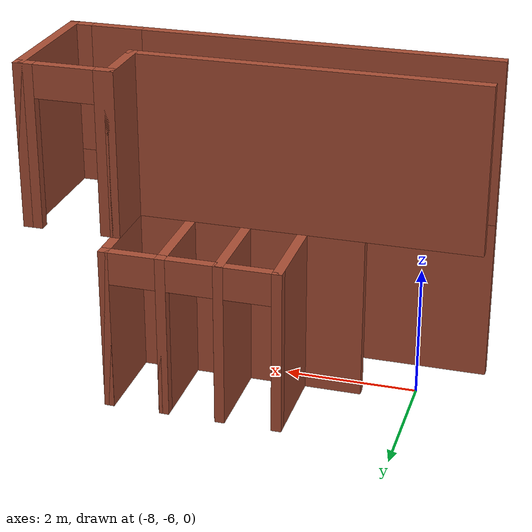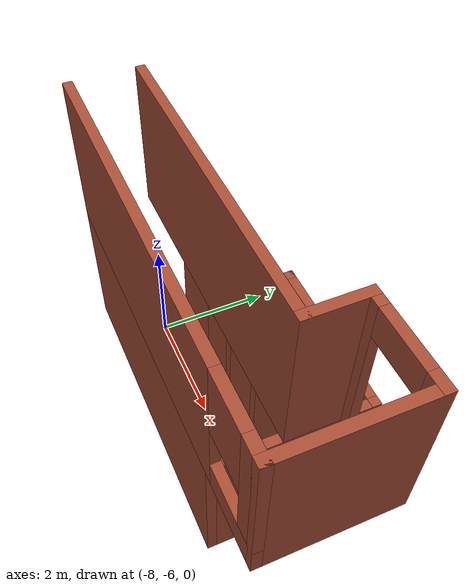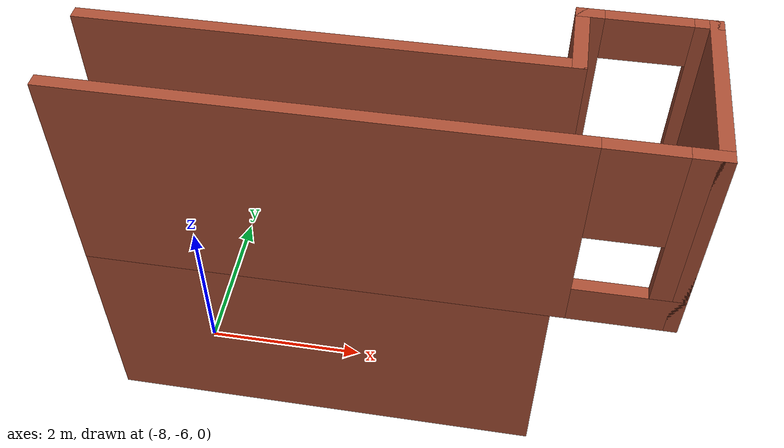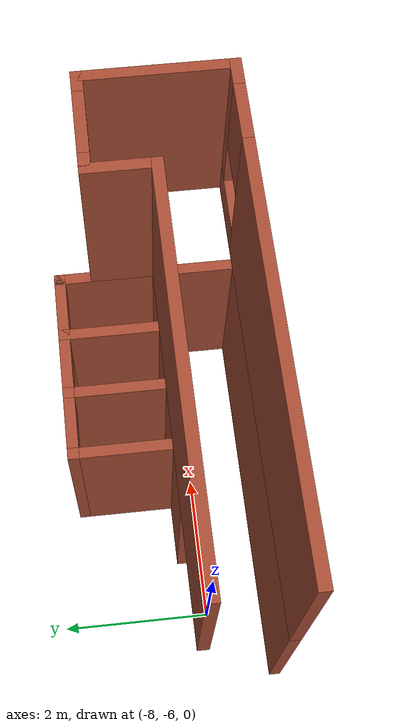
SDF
<sdf version="1.7">
 <model name="test_building">
  <pose>-5.145 -0.592 0 0 -0 0</pose>
  <link name="Wall_156">
   <collision name="Wall_156_Collision">
    <geometry><box><size>1.5 0.15 2.5</size></box></geometry>
    <pose>0 0 1.25 0 -0 0</pose>
   </collision>
   <visual name="Wall_156_Visual">
    <pose>0 0 1.25 0 -0 0</pose>
    <geometry><box><size>1.5 0.15 2.5</size></box></geometry>
    <material>
     <script><uri>file://media/materials/scripts/gazebo.material</uri><name>Gazebo/Bricks</name></script>
     <ambient>1 1 1 1</ambient>
    </material>
    <meta><layer>0</layer></meta>
   </visual>
   <pose>-1.15 -4.475 0 0 -0 -1.5708</pose>
  </link>
  <link name="Wall_157">
   <collision name="Wall_157_Collision">
    <geometry><box><size>1 0.15 2.5</size></box></geometry>
    <pose>0 0 1.25 0 -0 0</pose>
   </collision>
   <visual name="Wall_157_Visual">
    <pose>0 0 1.25 0 -0 0</pose>
    <geometry><box><size>1 0.15 2.5</size></box></geometry>
    <material>
     <script><uri>file://media/materials/scripts/gazebo.material</uri><name>Gazebo/Bricks</name></script>
     <ambient>1 1 1 1</ambient>
    </material>
    <meta><layer>0</layer></meta>
   </visual>
   <pose>-1.575 -5.15 0 0 -0 3.14159</pose>
  </link>
  <link name="Wall_161">
   <collision name="Wall_161_Collision">
    <geometry><box><size>1 0.15 2.5</size></box></geometry>
    <pose>0 0 1.25 0 -0 0</pose>
   </collision>
   <visual name="Wall_161_Visual">
    <pose>0 0 1.25 0 -0 0</pose>
    <geometry><box><size>1 0.15 2.5</size></box></geometry>
    <material>
     <script><uri>file://media/materials/scripts/gazebo.material</uri><name>Gazebo/Bricks</name></script>
     <ambient>1 1 1 1</ambient>
    </material>
    <meta><layer>0</layer></meta>
   </visual>
   <pose>-0.725 -5.15 0 0 -0 0</pose>
  </link>
  <link name="Wall_162">
   <collision name="Wall_162_Collision">
    <geometry><box><size>1.5 0.15 2.5</size></box></geometry>
    <pose>0 0 1.25 0 -0 0</pose>
   </collision>
   <visual name="Wall_162_Visual">
    <pose>0 0 1.25 0 -0 0</pose>
    <geometry><box><size>1.5 0.15 2.5</size></box></geometry>
    <material>
     <script><uri>file://media/materials/scripts/gazebo.material</uri><name>Gazebo/Bricks</name></script>
     <ambient>1 1 1 1</ambient>
    </material>
    <meta><layer>0</layer></meta>
   </visual>
   <pose>-0.3 -4.475 0 0 -0 1.5708</pose>
  </link>
  <link name="Wall_163">
   <pose>-0.725 -3.8 0 0 -0 3.14159</pose>
   <visual name="Wall_163_Visual_0">
    <pose>-0.425964 0 1.25 0 -0 0</pose>
    <geometry><box><size>0.148072 0.15 2.5</size></box></geometry>
    <material>
     <script><uri>file://media/materials/scripts/gazebo.material</uri><name>Gazebo/Bricks</name></script>
     <ambient>1 1 1 1</ambient>
    </material>
    <meta><layer>0</layer></meta>
   </visual>
   <collision name="Wall_163_Collision_0">
    <geometry><box><size>0.148072 0.15 2.5</size></box></geometry>
    <pose>-0.425964 0 1.25 0 -0 0</pose>
   </collision>
   <visual name="Wall_163_Visual_1">
    <pose>0.424036 0 1.25 0 -0 0</pose>
    <geometry><box><size>0.151928 0.15 2.5</size></box></geometry>
    <material>
     <script><uri>file://media/materials/scripts/gazebo.material</uri><name>Gazebo/Bricks</name></script>
     <ambient>1 1 1 1</ambient>
    </material>
    <meta><layer>0</layer></meta>
   </visual>
   <collision name="Wall_163_Collision_1">
    <geometry><box><size>0.151928 0.15 2.5</size></box></geometry>
    <pose>0.424036 0 1.25 0 -0 0</pose>
   </collision>
   <visual name="Wall_163_Visual_2">
    <pose>-0.001928 0 2.25 0 -0 0</pose>
    <geometry><box><size>0.7 0.15 0.5</size></box></geometry>
    <material>
     <script><uri>file://media/materials/scripts/gazebo.material</uri><name>Gazebo/Bricks</name></script>
     <ambient>1 1 1 1</ambient>
    </material>
    <meta><layer>0</layer></meta>
   </visual>
   <collision name="Wall_163_Collision_2">
    <geometry><box><size>0.7 0.15 0.5</size></box></geometry>
    <pose>-0.001928 0 2.25 0 -0 0</pose>
   </collision>
  </link>
  <link name="Wall_165">
   <collision name="Wall_165_Collision">
    <geometry><box><size>1 0.15 2.5</size></box></geometry>
    <pose>0 0 1.25 0 -0 0</pose>
   </collision>
   <visual name="Wall_165_Visual">
    <pose>0 0 1.25 0 -0 0</pose>
    <geometry><box><size>1 0.15 2.5</size></box></geometry>
    <material>
     <script><uri>file://media/materials/scripts/gazebo.material</uri><name>Gazebo/Bricks</name></script>
     <ambient>1 1 1 1</ambient>
    </material>
    <meta><layer>0</layer></meta>
   </visual>
   <pose>0.125 -5.15 0 0 -0 0</pose>
  </link>
  <link name="Wall_166">
   <collision name="Wall_166_Collision">
    <geometry><box><size>1.5 0.15 2.5</size></box></geometry>
    <pose>0 0 1.25 0 -0 0</pose>
   </collision>
   <visual name="Wall_166_Visual">
    <pose>0 0 1.25 0 -0 0</pose>
    <geometry><box><size>1.5 0.15 2.5</size></box></geometry>
    <material>
     <script><uri>file://media/materials/scripts/gazebo.material</uri><name>Gazebo/Bricks</name></script>
     <ambient>1 1 1 1</ambient>
    </material>
    <meta><layer>0</layer></meta>
   </visual>
   <pose>0.55 -4.475 0 0 -0 1.5708</pose>
  </link>
  <link name="Wall_167">
   <pose>0.125 -3.8 0 0 -0 3.14159</pose>
   <visual name="Wall_167_Visual_0">
    <pose>-0.424905 0 1.25 0 -0 0</pose>
    <geometry><box><size>0.150191 0.15 2.5</size></box></geometry>
    <material>
     <script><uri>file://media/materials/scripts/gazebo.material</uri><name>Gazebo/Bricks</name></script>
     <ambient>1 1 1 1</ambient>
    </material>
    <meta><layer>0</layer></meta>
   </visual>
   <collision name="Wall_167_Collision_0">
    <geometry><box><size>0.150191 0.15 2.5</size></box></geometry>
    <pose>-0.424905 0 1.25 0 -0 0</pose>
   </collision>
   <visual name="Wall_167_Visual_1">
    <pose>0.425095 0 1.25 0 -0 0</pose>
    <geometry><box><size>0.149809 0.15 2.5</size></box></geometry>
    <material>
     <script><uri>file://media/materials/scripts/gazebo.material</uri><name>Gazebo/Bricks</name></script>
     <ambient>1 1 1 1</ambient>
    </material>
    <meta><layer>0</layer></meta>
   </visual>
   <collision name="Wall_167_Collision_1">
    <geometry><box><size>0.149809 0.15 2.5</size></box></geometry>
    <pose>0.425095 0 1.25 0 -0 0</pose>
   </collision>
   <visual name="Wall_167_Visual_2">
    <pose>0.000191 0 2.25 0 -0 0</pose>
    <geometry><box><size>0.7 0.15 0.5</size></box></geometry>
    <material>
     <script><uri>file://media/materials/scripts/gazebo.material</uri><name>Gazebo/Bricks</name></script>
     <ambient>1 1 1 1</ambient>
    </material>
    <meta><layer>0</layer></meta>
   </visual>
   <collision name="Wall_167_Collision_2">
    <geometry><box><size>0.7 0.15 0.5</size></box></geometry>
    <pose>0.000191 0 2.25 0 -0 0</pose>
   </collision>
  </link>
  <link name="Wall_169">
   <pose>0.975 -3.8 0 0 -0 0</pose>
   <visual name="Wall_169_Visual_0">
    <pose>-0.424076 0 1.25 0 -0 0</pose>
    <geometry><box><size>0.151847 0.15 2.5</size></box></geometry>
    <material>
     <script><uri>file://media/materials/scripts/gazebo.material</uri><name>Gazebo/Bricks</name></script>
     <ambient>1 1 1 1</ambient>
    </material>
    <meta><layer>0</layer></meta>
   </visual>
   <collision name="Wall_169_Collision_0">
    <geometry><box><size>0.151847 0.15 2.5</size></box></geometry>
    <pose>-0.424076 0 1.25 0 -0 0</pose>
   </collision>
   <visual name="Wall_169_Visual_1">
    <pose>0.425924 0 1.25 0 -0 0</pose>
    <geometry><box><size>0.148153 0.15 2.5</size></box></geometry>
    <material>
     <script><uri>file://media/materials/scripts/gazebo.material</uri><name>Gazebo/Bricks</name></script>
     <ambient>1 1 1 1</ambient>
    </material>
    <meta><layer>0</layer></meta>
   </visual>
   <collision name="Wall_169_Collision_1">
    <geometry><box><size>0.148153 0.15 2.5</size></box></geometry>
    <pose>0.425924 0 1.25 0 -0 0</pose>
   </collision>
   <visual name="Wall_169_Visual_2">
    <pose>0.001847 0 2.25 0 -0 0</pose>
    <geometry><box><size>0.7 0.15 0.5</size></box></geometry>
    <material>
     <script><uri>file://media/materials/scripts/gazebo.material</uri><name>Gazebo/Bricks</name></script>
     <ambient>1 1 1 1</ambient>
    </material>
    <meta><layer>0</layer></meta>
   </visual>
   <collision name="Wall_169_Collision_2">
    <geometry><box><size>0.7 0.15 0.5</size></box></geometry>
    <pose>0.001847 0 2.25 0 -0 0</pose>
   </collision>
  </link>
  <link name="Wall_170">
   <collision name="Wall_170_Collision">
    <geometry><box><size>1.5 0.15 2.5</size></box></geometry>
    <pose>0 0 1.25 0 -0 0</pose>
   </collision>
   <visual name="Wall_170_Visual">
    <pose>0 0 1.25 0 -0 0</pose>
    <geometry><box><size>1.5 0.15 2.5</size></box></geometry>
    <material>
     <script><uri>file://media/materials/scripts/gazebo.material</uri><name>Gazebo/Bricks</name></script>
     <ambient>1 1 1 1</ambient>
    </material>
    <meta><layer>0</layer></meta>
   </visual>
   <pose>1.4 -4.475 0 0 -0 -1.5708</pose>
  </link>
  <link name="Wall_171">
   <collision name="Wall_171_Collision">
    <geometry><box><size>1 0.15 2.5</size></box></geometry>
    <pose>0 0 1.25 0 -0 0</pose>
   </collision>
   <visual name="Wall_171_Visual">
    <pose>0 0 1.25 0 -0 0</pose>
    <geometry><box><size>1 0.15 2.5</size></box></geometry>
    <material>
     <script><uri>file://media/materials/scripts/gazebo.material</uri><name>Gazebo/Bricks</name></script>
     <ambient>1 1 1 1</ambient>
    </material>
    <meta><layer>0</layer></meta>
   </visual>
   <pose>0.975 -5.15 0 0 -0 3.14159</pose>
  </link>
  <link name="Wall_185">
   <collision name="Wall_185_Collision">
    <geometry><box><size>1.25 0.15 2.5</size></box></geometry>
    <pose>0 0 1.25 0 -0 0</pose>
   </collision>
   <visual name="Wall_185_Visual">
    <pose>0 0 1.25 0 -0 0</pose>
    <geometry><box><size>1.25 0.15 2.5</size></box></geometry>
    <material>
     <script><uri>file://media/materials/scripts/gazebo.material</uri><name>Gazebo/Bricks</name></script>
     <ambient>1 1 1 1</ambient>
    </material>
    <meta><layer>0</layer></meta>
   </visual>
   <pose>1.4 -5.7 0 0 -0 -1.5708</pose>
  </link>
  <link name="Wall_187">
   <collision name="Wall_187_Collision">
    <geometry><box><size>5.25 0.15 2.5</size></box></geometry>
    <pose>0 0 1.25 0 -0 0</pose>
   </collision>
   <visual name="Wall_187_Visual">
    <pose>0 0 1.25 0 -0 0</pose>
    <geometry><box><size>5.25 0.15 2.5</size></box></geometry>
    <material>
     <script><uri>file://media/materials/scripts/gazebo.material</uri><name>Gazebo/Bricks</name></script>
     <ambient>1 1 1 1</ambient>
    </material>
    <meta><layer>0</layer></meta>
   </visual>
   <pose>-1.15 -6.25 0 0 -0 3.14159</pose>
  </link>
  <link name="Wall_379">
   <collision name="Wall_379_Collision">
    <geometry><box><size>5.25 0.15 2.5</size></box></geometry>
    <pose>0 0 1.25 0 -0 0</pose>
   </collision>
   <visual name="Wall_379_Visual">
    <pose>0 0 1.25 0 -0 0</pose>
    <geometry><box><size>5.25 0.15 2.5</size></box></geometry>
    <material>
     <script><uri>file://media/materials/scripts/gazebo.material</uri><name>Gazebo/Bricks</name></script>
     <ambient>1 1 1 1</ambient>
    </material>
    <meta><layer>1</layer></meta>
   </visual>
   <pose>-1.15 -5.15 2.5 0 -0 3.14159</pose>
  </link>
  <link name="Wall_381">
   <collision name="Wall_381_Collision">
    <geometry><box><size>1 0.15 2.5</size></box></geometry>
    <pose>0 0 1.25 0 -0 0</pose>
   </collision>
   <visual name="Wall_381_Visual">
    <pose>0 0 1.25 0 -0 0</pose>
    <geometry><box><size>1 0.15 2.5</size></box></geometry>
    <material>
     <script><uri>file://media/materials/scripts/gazebo.material</uri><name>Gazebo/Bricks</name></script>
     <ambient>1 1 1 1</ambient>
    </material>
    <meta><layer>1</layer></meta>
   </visual>
   <pose>1.4 -4.725 2.5 0 -0 1.5708</pose>
  </link>
  <link name="Wall_382">
   <pose>2.075 -4.3 2.5 0 -0 0</pose>
   <visual name="Wall_382_Visual_0">
    <pose>-0.60021 0 1.25 0 -0 0</pose>
    <geometry><box><size>0.299581 0.15 2.5</size></box></geometry>
    <material>
     <script><uri>file://media/materials/scripts/gazebo.material</uri><name>Gazebo/Bricks</name></script>
     <ambient>1 1 1 1</ambient>
    </material>
    <meta><layer>1</layer></meta>
   </visual>
   <collision name="Wall_382_Collision_0">
    <geometry><box><size>0.299581 0.15 2.5</size></box></geometry>
    <pose>-0.60021 0 1.25 0 -0 0</pose>
   </collision>
   <visual name="Wall_382_Visual_1">
    <pose>0.59979 0 1.25 0 -0 0</pose>
    <geometry><box><size>0.300419 0.15 2.5</size></box></geometry>
    <material>
     <script><uri>file://media/materials/scripts/gazebo.material</uri><name>Gazebo/Bricks</name></script>
     <ambient>1 1 1 1</ambient>
    </material>
    <meta><layer>1</layer></meta>
   </visual>
   <collision name="Wall_382_Collision_1">
    <geometry><box><size>0.300419 0.15 2.5</size></box></geometry>
    <pose>0.59979 0 1.25 0 -0 0</pose>
   </collision>
   <visual name="Wall_382_Visual_2">
    <pose>-0.000419 0 2.25 0 -0 0</pose>
    <geometry><box><size>0.9 0.15 0.5</size></box></geometry>
    <material>
     <script><uri>file://media/materials/scripts/gazebo.material</uri><name>Gazebo/Bricks</name></script>
     <ambient>1 1 1 1</ambient>
    </material>
    <meta><layer>1</layer></meta>
   </visual>
   <collision name="Wall_382_Collision_2">
    <geometry><box><size>0.9 0.15 0.5</size></box></geometry>
    <pose>-0.000419 0 2.25 0 -0 0</pose>
   </collision>
  </link>
  <link name="Wall_383">
   <collision name="Wall_383_Collision">
    <geometry><box><size>2.1 0.15 2.5</size></box></geometry>
    <pose>0 0 1.25 0 -0 0</pose>
   </collision>
   <visual name="Wall_383_Visual">
    <pose>0 0 1.25 0 -0 0</pose>
    <geometry><box><size>2.1 0.15 2.5</size></box></geometry>
    <material>
     <script><uri>file://media/materials/scripts/gazebo.material</uri><name>Gazebo/Bricks</name></script>
     <ambient>1 1 1 1</ambient>
    </material>
    <meta><layer>1</layer></meta>
   </visual>
   <pose>2.75 -5.275 2.5 0 -0 -1.5708</pose>
  </link>
  <link name="Wall_385">
   <pose>-0.475 -6.25 2.5 0 -0 0</pose>
   <visual name="Wall_385_Visual_0">
    <pose>-0.594329 0 1.25 0 -0 0</pose>
    <geometry><box><size>5.41134 0.15 2.5</size></box></geometry>
    <material>
     <script><uri>file://media/materials/scripts/gazebo.material</uri><name>Gazebo/Bricks</name></script>
     <ambient>1 1 1 1</ambient>
    </material>
    <meta><layer>1</layer></meta>
   </visual>
   <collision name="Wall_385_Collision_0">
    <geometry><box><size>5.41134 0.15 2.5</size></box></geometry>
    <pose>-0.594329 0 1.25 0 -0 0</pose>
   </collision>
   <visual name="Wall_385_Visual_1">
    <pose>2.70567 0 0.25 0 -0 0</pose>
    <geometry><box><size>1.18866 0.15 0.5</size></box></geometry>
    <material>
     <script><uri>file://media/materials/scripts/gazebo.material</uri><name>Gazebo/Bricks</name></script>
     <ambient>1 1 1 1</ambient>
    </material>
    <meta><layer>1</layer></meta>
   </visual>
   <collision name="Wall_385_Collision_1">
    <geometry><box><size>1.18866 0.15 0.5</size></box></geometry>
    <pose>2.70567 0 0.25 0 -0 0</pose>
   </collision>
   <visual name="Wall_385_Visual_2">
    <pose>3.10567 0 1.5 0 -0 0</pose>
    <geometry><box><size>0.388657 0.15 2</size></box></geometry>
    <material>
     <script><uri>file://media/materials/scripts/gazebo.material</uri><name>Gazebo/Bricks</name></script>
     <ambient>1 1 1 1</ambient>
    </material>
    <meta><layer>1</layer></meta>
   </visual>
   <collision name="Wall_385_Collision_2">
    <geometry><box><size>0.388657 0.15 2</size></box></geometry>
    <pose>3.10567 0 1.5 0 -0 0</pose>
   </collision>
   <visual name="Wall_385_Visual_3">
    <pose>2.51134 0 1.9 0 -0 0</pose>
    <geometry><box><size>0.8 0.15 1.2</size></box></geometry>
    <material>
     <script><uri>file://media/materials/scripts/gazebo.material</uri><name>Gazebo/Bricks</name></script>
     <ambient>1 1 1 1</ambient>
    </material>
    <meta><layer>1</layer></meta>
   </visual>
   <collision name="Wall_385_Collision_3">
    <geometry><box><size>0.8 0.15 1.2</size></box></geometry>
    <pose>2.51134 0 1.9 0 -0 0</pose>
   </collision>
  </link>
  <static>1</static>
 </model>
</sdf>
